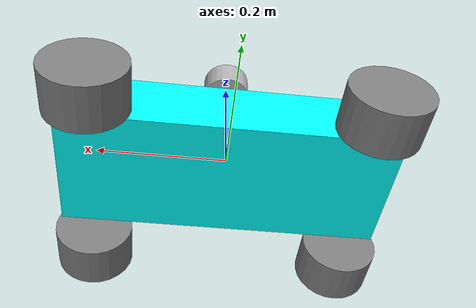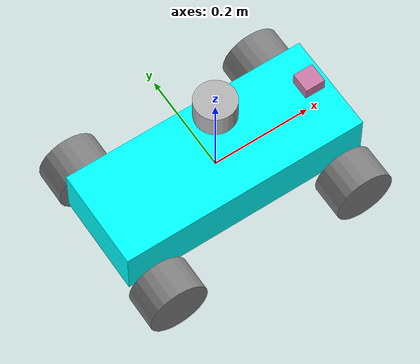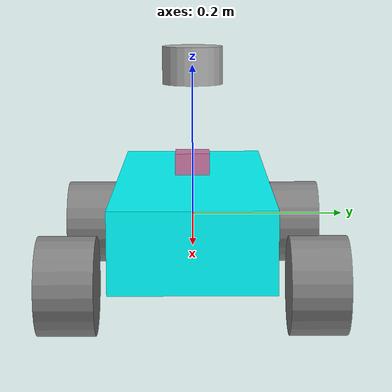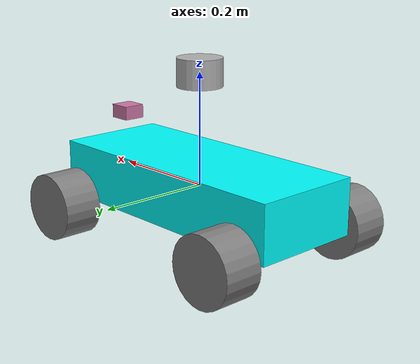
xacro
<?xml version="1.0"?>
<robot name="racing_car" xmlns:xacro="http://ros.org/wiki/xacro">

  <!-- Include other Xacro files -->
  <xacro:include filename="$(find racecar_driver_hardware)/urdf/properties.xacro"/>
  <xacro:include filename="$(find racecar_driver_hardware)/urdf/chassis.xacro"/>
  <xacro:include filename="$(find racecar_driver_hardware)/urdf/wheels.xacro"/>
  <xacro:include filename="$(find racecar_driver_hardware)/urdf/sensors.xacro"/>
  <xacro:include filename="$(find racecar_driver_hardware)/urdf/ros2_control.xacro"/>

</robot>

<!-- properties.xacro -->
<robot xmlns:xacro="http://ros.org/wiki/xacro">

<!-- Define robot constants -->
<xacro:property name="base_width" value="0.20"/>
<xacro:property name="base_length" value="0.50"/>
<xacro:property name="base_height" value="0.10"/>

<xacro:property name="wheel_radius" value="0.06"/>
<xacro:property name="wheel_width" value="0.07"/>
<xacro:property name="wheel_ygap" value="0.05"/>
<xacro:property name="wheel_zoff" value="0.07"/>
<xacro:property name="wheel_xoff" value="0.2"/>

<!-- Define inertial macros -->
<xacro:macro name="box_inertia" params="m w h d">
  <inertial>
    <origin xyz="0 0 0" rpy="0 0 0"/>
    <mass value="${m}"/>
    <inertia ixx="${(m/12) * (h*h + d*d)}" ixy="0.0" ixz="0.0" iyy="${(m/12) * (w*w + d*d)}" iyz="0.0" izz="${(m/12) * (w*w + h*h)}"/>
  </inertial>
</xacro:macro>

<xacro:macro name="cylinder_inertia" params="m r h">
  <inertial>
    <origin xyz="0 0 0" rpy="0 0 0"/>
    <mass value="${m}"/>
    <inertia ixx="${(1/12)*m*(3*r*r + h*h)}" ixy="0.0" ixz="0.0" iyy="${(1/12)*m*(3*r*r + h*h)}" iyz="0.0" izz="${0.5*m*r*r}"/>
  </inertial>
</xacro:macro>

</robot>

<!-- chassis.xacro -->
<robot xmlns:xacro="http://ros.org/wiki/xacro">

<!-- Robot Base -->
<link name="base_link">
  <visual>
    <geometry>
      <box size="${base_length} ${base_width} ${base_height}"/>
    </geometry>
    <material name="Cyan">
      <color rgba="0 1.0 1.0 1.0"/>
    </material>
  </visual>

  <collision>
    <geometry>
      <box size="${base_length} ${base_width} ${base_height}"/>
    </geometry>
  </collision>

</link>

<!-- Robot Footprint -->
  <link name="base_footprint">
  </link>
<joint name="base_joint" type="fixed">
  <parent link="base_link"/>
  <child link="base_footprint"/>
  <origin xyz="0.0 0.0 -0.1" rpy="0 0 0"/>
</joint>

</robot>

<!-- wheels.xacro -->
<robot xmlns:xacro="http://ros.org/wiki/xacro">

<!-- Steering Link -->
<link name="steering_link">

</link>

<joint name="steering_joint" type="revolute">
  <parent link="base_footprint"/>
  <child link="steering_link"/>
  <origin xyz="${wheel_xoff} 0 0.05" rpy="-${pi/2} 0 0"/>
  <axis xyz="0 1 0"/>
  <limit effort="10.0" velocity="1.0" lower="-0.7854" upper="0.7854"/>
</joint>

<!-- Front Left Wheel -->
<link name="front_left_wheel_link">
  <visual>
    <origin xyz="0 0 0" rpy="0 0 0"/>
    <geometry>
      <cylinder radius="${wheel_radius}" length="${wheel_width}"/>
    </geometry>
    <material name="Gray">
      <color rgba="0.5 0.5 0.5 1.0"/>
    </material>
  </visual>

  <collision>
    <origin xyz="0 0 0" rpy="0 0 0"/>
    <geometry>
      <cylinder radius="${wheel_radius}" length="${wheel_width}"/>
    </geometry>
  </collision>

  <xacro:cylinder_inertia m="0.5" r="${wheel_radius}" h="${wheel_width}"/>
</link>

<joint name="front_left_wheel_joint" type="revolute">
  <parent link="base_footprint"/>
  <child link="front_left_wheel_link"/>
  <origin xyz="${wheel_xoff}  ${(base_width/2 + wheel_ygap)} 0.05" rpy="-${pi/2} 0 0"/>
  <axis xyz="0 1 0"/>
  <limit effort="10.0" velocity="1.0" lower="-0.7854" upper="0.7854"/>
</joint>

<!-- Front Right Wheel -->
<link name="front_right_wheel_link">
  <!-- Same as front_left_wheel_link -->
  <visual>
    <origin xyz="0 0 0" rpy="0 0 0"/>
    <geometry>
      <cylinder radius="${wheel_radius}" length="${wheel_width}"/>
    </geometry>
    <material name="Gray">
      <color rgba="0.5 0.5 0.5 1.0"/>
    </material>
  </visual>

  <collision>
    <origin xyz="0 0 0" rpy="0 0 0"/>
    <geometry>
      <cylinder radius="${wheel_radius}" length="${wheel_width}"/>
    </geometry>
  </collision>

  <xacro:cylinder_inertia m="0.5" r="${wheel_radius}" h="${wheel_width}"/>
</link>

<joint name="front_right_wheel_joint" type="revolute">
  <parent link="base_footprint"/>
  <child link="front_right_wheel_link"/>
  <origin xyz="${wheel_xoff} ${-(base_width/2 + wheel_ygap)} 0.05" rpy="-${pi/2} 0 0"/>
  <axis xyz="0 1 0"/>
  <limit effort="10.0" velocity="1.0" lower="-0.7854" upper="0.7854"/>
</joint>

<!-- Rear Wheels Link -->
  <link name="rear_wheels_link">
    <!-- Inertial properties -->
    <inertial>
      <mass value="1.0"/> <!-- Adjust mass as needed -->
      <origin xyz="0 0 0"/>
      <inertia ixx="0.01" ixy="0.0" ixz="0.0" iyy="0.01" iyz="0.0" izz="0.01"/>
    </inertial>

    <!-- Visual elements -->
    <visual>
      <!-- Left Wheel Visual -->
      <origin xyz="0 ${(base_width/2 + wheel_ygap)} 0" rpy="-${pi/2} 0 0"/>
      <geometry>
        <cylinder radius="${wheel_radius}" length="${wheel_width}"/>
      </geometry>
      <material name="Gray">
        <color rgba="0.5 0.5 0.5 1.0"/>
      </material>
    </visual>
      <!-- Right Wheel Visual -->
    <visual>
      <origin xyz="0 ${-(base_width/2 + wheel_ygap)} 0" rpy="-${pi/2} 0 0"/>
      <geometry>
        <cylinder radius="${wheel_radius}" length="${wheel_width}"/>
      </geometry>
      <material name="Gray">
        <color rgba="0.5 0.5 0.5 1.0"/>
      </material>
    </visual>

    <!-- Collision elements -->
    <collision>
      <!-- Left Wheel Collision -->
      <origin xyz="0 ${(base_width/2 + wheel_ygap)} 0" rpy="-${pi/2} 0 0"/>
      <geometry>
        <cylinder radius="${wheel_radius}" length="${wheel_width}"/>
      </geometry>

      <!-- Right Wheel Collision -->
      <origin xyz="0 ${-(base_width/2 + wheel_ygap)} 0" rpy="-${pi/2} 0 0"/>
      <geometry>
        <cylinder radius="${wheel_radius}" length="${wheel_width}"/>
      </geometry>
    </collision>
  </link>

  <!-- Traction Joint -->
  <joint name="traction_joint" type="continuous">
    <parent link="base_footprint"/>
    <child link="rear_wheels_link"/>
    <origin xyz="${-wheel_xoff} 0 0.05" rpy="0 0 0"/>
    <axis xyz="0 1 0"/> <!-- Adjust axis if necessary -->
  </joint>

</robot>
<!-- Rear Left Wheel -->

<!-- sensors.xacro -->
<robot xmlns:xacro="http://ros.org/wiki/xacro">

<!-- IMU -->
<link name="imu_link">
  <visual>
    <geometry>
      <box size="0.04 0.04 0.025"/>
    </geometry>
  </visual>

  <collision>
    <geometry>
      <box size="0.04 0.04 0.025"/>
    </geometry>
  </collision>

  <inertial>
    <origin xyz="0 0 0" rpy="0 0 0"/>
    <mass value="0.1"/>
    <inertia ixx="0.0001" ixy="0" ixz="0" iyy="0.0001" iyz="0" izz="0.0001"/>
  </inertial>
</link>

<joint name="imu_joint" type="fixed">
  <parent link="base_footprint"/>
  <child link="imu_link"/>
  <origin xyz="0.20 0 0.2" rpy="0 0 0"/>
</joint>

<!-- Lidar -->
<link name="laser_link">
  <inertial>
    <origin xyz="0 0 0" rpy="0 0 0"/>
    <mass value="0.125"/>
    <inertia ixx="0.001" ixy="0" ixz="0" iyy="0.001" iyz="0" izz="0.001"/>
  </inertial>

  <collision>
    <origin xyz="0 0 0" rpy="0 0 0"/>
    <geometry>
      <cylinder radius="0.04" length="0.05"/>
    </geometry>
  </collision>

  <visual>
    <origin xyz="0 0 0" rpy="0 0 0"/>
    <geometry>
      <cylinder radius="0.04" length="0.05"/>
    </geometry>
  </visual>
</link>

<joint name="lidar_joint" type="fixed">
  <parent link="base_footprint"/>
  <child link="laser_link"/>
  <origin xyz="0 0 0.30" rpy="0 0 0"/>
</joint>

</robot>
